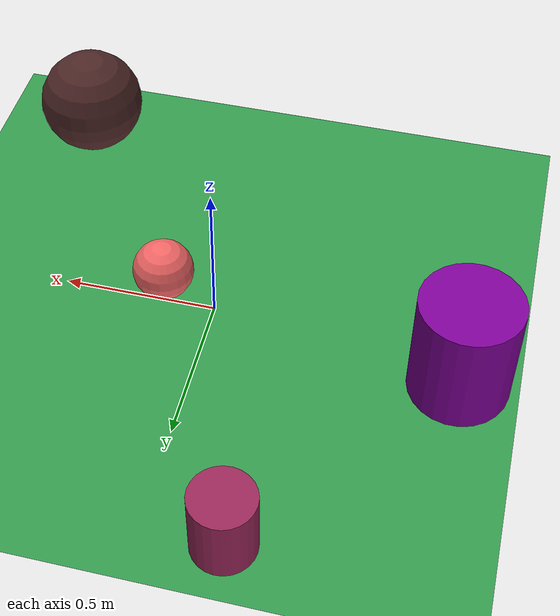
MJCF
<mujoco>
   <asset>
<texture type="skybox" builtin="gradient" rgb1="0.6 0.1 0.4" rgb2="0.9 0.7 0.7" width="256" height="256"/>
<texture name="gradient_0" builtin="gradient" rgb1="0.1 0.0 0.2" rgb2="0.5 0.3 0.1" width="200" height="200"/>
<texture name="gradient_1" builtin="gradient" rgb1="0.9 0.5 0.4" rgb2="1.0 0.3 0.4" width="200" height="200"/>
<texture name="checker_2" builtin="checker" rgb1="0.3 0.1 0.2" rgb2="0.9 0.2 0.5" width="200" height="200"/>
<texture name="flat_3" builtin="flat" rgb1="0.5 0.0 0.6" rgb2="0.5 0.0 0.6"  width="200" height="200"/><material name="gradient_0_mat" reflectance="0" texture="gradient_0" texuniform="true"/>
<material name="gradient_1_mat" reflectance="0" texture="gradient_1" texuniform="true"/>
<material name="checker_2_mat" reflectance="0" texrepeat="2 2" texture="checker_2" texuniform="false" />
<material name="flat_3_mat" reflectance="0" texture="flat_3" texuniform="true"/>
   </asset>

   <worldbody>
      <light diffuse=".9 .9 .9" pos="0 0 3" dir="0 0 -1"/>
     <geom type="plane" size="1 1 0.1" rgba="0.2 0.6 0.3 1"/>
<geom type="sphere" pos="0.64 -0.7 0.18" size="0.18 0.18 0.18" material="gradient_0_mat" euler="0 0 85" />
<geom type="sphere" pos="0.18 -0.04 0.1" size="0.1 0.1 0.1" material="gradient_1_mat" euler="0 0 64" />
<geom type="cylinder" pos="-0.25 0.83 0.12" size="0.1 0.12 0.12" material="checker_2_mat" euler="0 0 73" />
<geom type="cylinder" pos="-0.81 0.12 0.19" size="0.16 0.19 0.19" material="flat_3_mat" euler="0 0 24" /><camera euler="60 0 180" fovy="60" name="camera1" pos="-0.2 -1.5 1"></camera>   </worldbody>
</mujoco>
